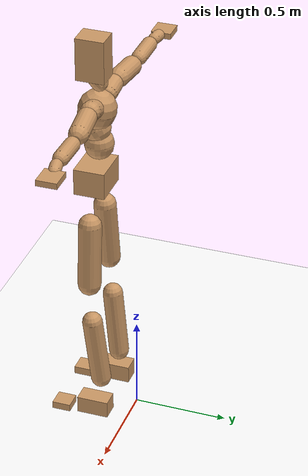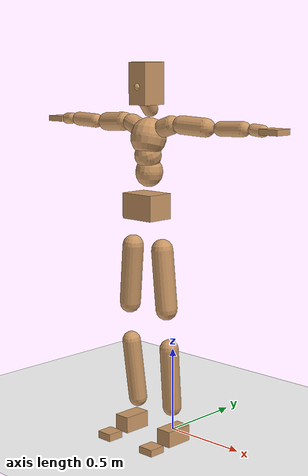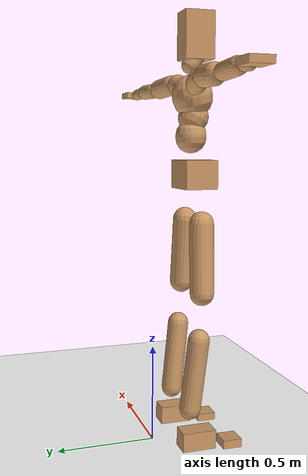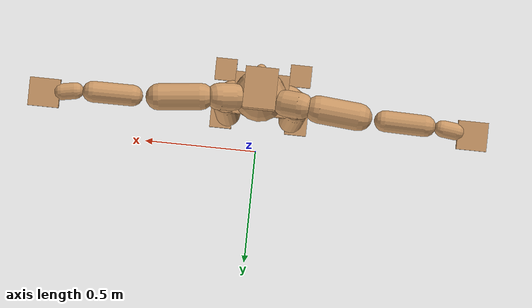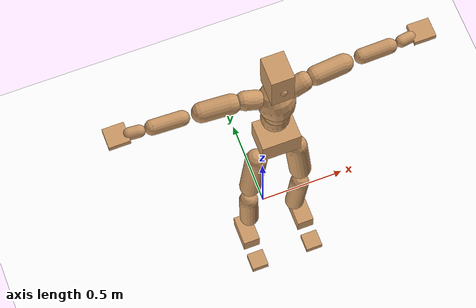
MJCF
<mujoco model="humanoid">
  <option integrator="implicitfast" />

  <visual>
    <global offwidth="1280" offheight="960" />
    <headlight active="1" ambient="0.34 0.34 0.34" diffuse="0.5 0.5 0.5" />
  </visual>

  <default>
    <joint damping="2" stiffness="2" armature="0.01" limited="true" solimplimit="0 .99 .01" />
    <geom condim="1" friction="0.7 0.005 0.0001" solimp=".99 .99 .003" solref="0.015 1" margin="0.001" rgba="0.8 0.6 .4 1" />
    <default class="smplcontact">
      <geom condim="3" friction="1. 0.005 0.0001" solref="0.015 1" solimp="0.98 0.98 0.001" priority="1" />
    </default>
    <default class="stiff_medium">
      <joint stiffness="10" />
    </default>
    <default class="stiff_medium_higher">
      <joint stiffness="50" />
    </default>
    <default class="stiff_high">
      <joint stiffness="100" />
    </default>
  </default>

  <asset>
    <texture type="skybox" builtin="gradient" rgb1="0.99 0.99 0.99" rgb2="0.608 0.828 0.892" width="100" />
    <texture builtin="flat" height="1278" mark="cross" markrgb="1 1 1" name="texgeom" random="0.01" rgb1="0.8 0.6 0.4" rgb2="0.8 0.6 0.4" type="cube" width="127" />
    <texture name="texplane" type="2d" builtin="checker" markrgb="1 1 1" rgb1="0.756 0.772 0.76" rgb2="0.6 0.6 0.6" width="100" height="100" />
    <material name="MatPlane" reflectance="0.5" texture="texplane" texrepeat="1 1" texuniform="true" />
    <material name="geom" texture="texgeom" texuniform="true" />
  </asset>

  <worldbody>
    <light name="tracking_light" pos="0 0 7" dir="0 0 -1" directional="true" cutoff="100" exponent="1" diffuse="1 1 1" specular="0.1 0.1 0.1" mode="trackcom" />
    <camera name="back" pos="0 3 2.4" xyaxes="-1 0 0 0 -1 2" mode="trackcom" />
    <camera name="side" pos="-3 0 2.4" xyaxes="0 -1 0 1 0 2" mode="trackcom" />
    <camera name="front_side" pos="-2.8 -2.8 0.8" xyaxes="0.5 -0.5 0 0.1 0.1 1" mode="trackcom" />
    <geom condim="3" name="floor" pos="0 0 0" rgba="1 1 1 1" size="100 100 .2" type="plane" material="MatPlane" />
    <body name="Pelvis" pos="-0.0018 -0.2233 1.39425" euler="90 0 0">
      <site name="Pelvis" size="0.01" />
      <freejoint name="Pelvis" />
      <geom type="box" pos="-0.0000 -0.0121 -0.0055" size="0.1069 0.0722 0.083" quat="1.0000 0.0000 0.0000 0.0000" density="3165.830099" name="Pelvis" />
      <body name="L_Hip" pos="0.10425 -0.1371 -0.0102">
        <joint name="L_Hip_x" type="hinge" pos="0 0 0" axis="1 0 0" stiffness="20.003933999999997" range="-160.0 22.92" class="stiff_medium" damping="35.822411020285365" armature="0.02851095036953482"/>
        <joint name="L_Hip_y" type="hinge" pos="0 0 0" axis="0 1 0" stiffness="19.874786333333333" range="-70.0 70.0" class="stiff_medium" damping="19.52106111802301" armature="0.019173631393182268"/>
        <joint name="L_Hip_z" type="hinge" pos="0 0 0" axis="0 0 1" stiffness="19.899440777777777" range="-28.65 90.0" class="stiff_medium" damping="23.82476883072695" armature="0.028524400066129187"/>
        <geom type="capsule" density="2040.816327" fromto="0.01035 -0.1125 -0.00135 0.0411 -0.4503 -0.0054" size="0.0615" name="L_Hip" />
        <body name="L_Knee" pos="0.05145 -0.5628 -0.00675">
          <joint name="L_Knee_x" type="hinge" pos="0 0 0" axis="1 0 0" range="-5.16 171.89" damping="17.98138048033531" armature="0.026396428561925728" stiffness="3.827814755555556"/>
          <joint name="L_Knee_y" type="hinge" pos="0 0 0" axis="0 1 0" range="-4.58 6.88" damping="14.976159110005929" armature="0.017722990590982594" stiffness="3.9547032944444442"/>
          <joint name="L_Knee_z" type="hinge" pos="0 0 0" axis="0 0 1" range="-6.88 4.58" damping="17.940045822598716" armature="0.026455159530536433" stiffness="3.8017778222222223"/>
          <geom type="capsule" density="1234.567901" fromto="-0.00405 -0.1194 -0.01305 -0.01635 -0.4776 -0.0525" size="0.0541" name="L_Knee" />
          <body name="L_Ankle" pos="-0.0204 -0.597 -0.06555">
            <joint name="L_Ankle_x" type="hinge" pos="0 0 0" axis="1 0 0" range="-45.84 45.84" class="stiff_medium" damping="9.919510798854802" armature="0.01822161009048093" stiffness="15.0"/>
            <joint name="L_Ankle_y" type="hinge" pos="0 0 0" axis="0 1 0" range="-74.48 22.92" class="stiff_medium" damping="4.917952818000754" armature="0.017915748088949298" stiffness="15.0"/>
            <joint name="L_Ankle_z" type="hinge" pos="0 0 0" axis="0 0 1" range="-4.58 4.58" class="stiff_medium" damping="9.269968981325505" armature="0.015913393502729075" stiffness="15.0"/>
            <geom type="box" pos="0.03495 -0.03585 0.0363" size="0.0483 0.0464 0.085" quat="1.0000 0.0000 0.0000 0.0000" density="449.071558" name="L_Ankle" class="smplcontact" />
            <body name="L_Toe" pos="0.0396 -0.0837 0.17895">
              <joint name="L_Toe_x" type="hinge" pos="0 0 0" axis="1 0 0" range="-91.67 22.92" armature="0.014752348892847213" damping="2.9751318182071076" stiffness="3.0"/>
              <joint name="L_Toe_y" type="hinge" pos="0 0 0" axis="0 1 0" range="-4.58 4.58" armature="0.013348413454862205" damping="2.8300261611718933" stiffness="3.0"/>
              <joint name="L_Toe_z" type="hinge" pos="0 0 0" axis="0 0 1" range="-4.58 4.58" armature="0.010509731565732318" damping="2.511142954799545" stiffness="3.0"/>
              <geom type="box" pos="-0.0045 0.00825 0.0372" size="0.0478 0.02 0.0496" quat="1.0000 0.0000 0.0000 0.0000" density="423.206892" name="L_Toe" class="smplcontact" />
            </body>
          </body>
        </body>
      </body>
      <body name="R_Hip" pos="-0.10155 -0.13575 -0.00645">
        <joint name="R_Hip_x" type="hinge" pos="0 0 0" axis="1 0 0" stiffness="20.003933999999997" range="-160.0 22.92" class="stiff_medium" damping="35.822411020285365" armature="0.02851095036953482"/>
        <joint name="R_Hip_y" type="hinge" pos="0 0 0" axis="0 1 0" stiffness="19.874786333333333" range="-70.0 70.0" class="stiff_medium" damping="19.52106111802301" armature="0.019173631393182268"/>
        <joint name="R_Hip_z" type="hinge" pos="0 0 0" axis="0 0 1" stiffness="19.899440777777777" range="-90.0 28.65" class="stiff_medium" damping="23.82476883072695" armature="0.028524400066129187"/>
        <geom type="capsule" density="2040.816327" fromto="-0.01155 -0.11475 -0.0027 -0.0459 -0.45915 -0.01065" size="0.0606" name="R_Hip" />
        <body name="R_Knee" pos="-0.05745 -0.5739 -0.01335">
          <joint name="R_Knee_x" type="hinge" pos="0 0 0" axis="1 0 0" range="-5.16 171.89" damping="17.98138048033531" armature="0.026396428561925728" stiffness="3.827814755555556"/>
          <joint name="R_Knee_y" type="hinge" pos="0 0 0" axis="0 1 0" range="-6.88 4.58" damping="14.976159110005929" armature="0.017722990590982594" stiffness="3.9547032944444442"/>
          <joint name="R_Knee_z" type="hinge" pos="0 0 0" axis="0 0 1" range="-4.58 6.88" damping="17.940045822598716" armature="0.026455159530536433" stiffness="3.8017778222222223"/>
          <geom type="capsule" density="1234.567901" fromto="0.0048 -0.11955 -0.01275 0.0189 -0.47805 -0.0507" size="0.0541" name="R_Knee" />
          <body name="R_Ankle" pos="0.0237 -0.5976 -0.06345">
            <joint name="R_Ankle_x" type="hinge" pos="0 0 0" axis="1 0 0" range="-45.84 45.84" class="stiff_medium" damping="9.919510798854802" armature="0.01822161009048093" stiffness="15.0"/>
            <joint name="R_Ankle_y" type="hinge" pos="0 0 0" axis="0 1 0" range="-22.92 74.48" class="stiff_medium" damping="4.917952818000754" armature="0.017915748088949298" stiffness="15.0"/>
            <joint name="R_Ankle_z" type="hinge" pos="0 0 0" axis="0 0 1" range="-4.58 4.58" class="stiff_medium" damping="9.269968981325505" armature="0.015913393502729075" stiffness="15.0"/>
            <geom type="box" pos="-0.0318 -0.0261 0.0384" size="0.0483 0.0478 0.0865" quat="1.0000 0.0000 0.0000 0.0000" density="434.700981" name="R_Ankle" class="smplcontact" />
            <body name="R_Toe" pos="-0.0381 -0.07215 0.18495">
              <joint name="R_Toe_x" type="hinge" pos="0 0 0" axis="1 0 0" range="-91.67 22.92" armature="0.014752348892847213" damping="2.9751318182071076" stiffness="3.0"/>
              <joint name="R_Toe_y" type="hinge" pos="0 0 0" axis="0 1 0" range="-4.58 4.58" armature="0.013348413454862205" damping="2.8300261611718933" stiffness="3.0"/>
              <joint name="R_Toe_z" type="hinge" pos="0 0 0" axis="0 0 1" range="-4.58 4.58" armature="0.010509731565732318" damping="2.511142954799545" stiffness="3.0"/>
              <geom type="box" pos="0.0063 0.00675 0.03405" size="0.0479 0.0216 0.0493" quat="1.0000 0.0000 0.0000 0.0000" density="407.384095" name="R_Toe" class="smplcontact" />
            </body>
          </body>
        </body>
      </body>
      <body name="Torso" pos="-0.0025 0.109 -0.0267">
        <joint name="Torso_x" type="hinge" pos="0 0 0" axis="1 0 0" range="-25.78 57.3" class="stiff_medium" damping="15.0" armature="0.010000000000000002" stiffness="10.0"/>
        <joint name="Torso_y" type="hinge" pos="0 0 0" axis="0 1 0" range="-57.3 57.3" class="stiff_high" damping="20.0" armature="0.010000000000000002" stiffness="100.0"/>
        <joint name="Torso_z" type="hinge" pos="0 0 0" axis="0 0 1" range="-34.38 34.38" class="stiff_high" damping="19.999999999999996" armature="0.009999999999999998" stiffness="100.0"/>
        <geom type="capsule" density="2040.816327" fromto="0.0025 0.0608 0.0005 0.003 0.0743 0.0006" size="0.0769" name="Torso" />
        <body name="Spine" pos="0.0055 0.1352 0.0011">
          <joint name="Spine_x" type="hinge" pos="0 0 0" axis="1 0 0" stiffness="10.0" range="-25.78 57.3" class="stiff_medium" damping="15.000000000000007" armature="0.010000000000000009"/>
          <joint name="Spine_y" type="hinge" pos="0 0 0" axis="0 1 0" stiffness="10.0" range="-57.3 57.3" class="stiff_high" damping="7.999999999999999" armature="0.009999999999999998"/>
          <joint name="Spine_z" type="hinge" pos="0 0 0" axis="0 0 1" stiffness="20.0" range="-34.38 34.38" class="stiff_high" damping="12.0" armature="0.010000000000000002"/>
          <geom type="capsule" density="2040.816327" fromto="0.0007 0.0238 0.0114 0.0008 0.0291 0.014" size="0.0755" name="Spine" />
          <body name="Chest" pos="0.0015 0.0529 0.0254">
            <joint name="Chest_x" type="hinge" pos="0 0 0" axis="1 0 0" stiffness="10.0" range="-25.78 57.3" class="stiff_medium" damping="14.999999999999998" armature="0.009999999999999998"/>
            <joint name="Chest_y" type="hinge" pos="0 0 0" axis="0 1 0" stiffness="10.0" range="-57.3 57.3" class="stiff_high" damping="8.0" armature="0.010000000000000002"/>
            <joint name="Chest_z" type="hinge" pos="0 0 0" axis="0 0 1" stiffness="20.0" range="-34.38 34.38" class="stiff_high" damping="12.0" armature="0.01"/>
            <geom type="capsule" density="2040.816327" fromto="-0.0009 0.0682 -0.0173 -0.001 0.0833 -0.0212" size="0.1002" name="Chest" />
            <body name="Neck" pos="-0.0028 0.2139 -0.0429">
              <joint name="Neck_x" type="hinge" pos="0 0 0" axis="1 0 0" range="-28.65 57.3" class="stiff_medium_higher" damping="9.999999999999986" armature="0.00999999999999997" stiffness="50.0"/>
              <joint name="Neck_y" type="hinge" pos="0 0 0" axis="0 1 0" range="-40.11 40.11" class="stiff_medium_higher" damping="10.0" armature="0.01" stiffness="50.0"/>
              <joint name="Neck_z" type="hinge" pos="0 0 0" axis="0 0 1" range="-40.11 40.11" class="stiff_medium_higher" damping="9.999999999999984" armature="0.009999999999999967" stiffness="50.0"/>
              <geom type="capsule" density="1000" fromto="0.001 0.013 0.0103 0.0041 0.052 0.0411" size="0.0436" name="Neck" />
              <body name="Head" pos="0.0052 0.065 0.0513">
                <joint name="Head_x" type="hinge" pos="0 0 0" axis="1 0 0" range="-28.65 57.3" class="stiff_medium_higher" damping="2.000000000000006" armature="0.010000000000000064" stiffness="50.0"/>
                <joint name="Head_y" type="hinge" pos="0 0 0" axis="0 1 0" range="-40.11 40.11" class="stiff_medium_higher" damping="2.0" armature="0.01" stiffness="50.0"/>
                <joint name="Head_z" type="hinge" pos="0 0 0" axis="0 0 1" range="-40.11 40.11" class="stiff_medium_higher" damping="2.0000000000000027" armature="0.01000000000000003" stiffness="50.0"/>
                <geom type="box" pos="-0.0042 0.0876 -0.0116" size="0.0606 0.1154 0.076" quat="1.0000 0.0000 0.0000 0.0000" density="1018.069894" name="Head" />
                <geom type="capsule" name="nose" size="0.02 0.01" pos="0 0.07 0.05" quat="1 0 0 0" mass="0" contype="0" conaffinity="0" />
              </body>
            </body>
            <body name="L_Thorax" pos="0.0788 0.1217 -0.0341">
              <joint name="L_Thorax_x" type="hinge" pos="0 0 0" axis="1 0 0" range="-10.89 4.58" class="stiff_medium_higher" damping="20.000000000000036" armature="0.010000000000000035" stiffness="50.0"/>
              <joint name="L_Thorax_y" type="hinge" pos="0 0 0" axis="0 1 0" range="-28.65 17.19" class="stiff_medium_higher" damping="20.0" armature="0.01" stiffness="50.0"/>
              <joint name="L_Thorax_z" type="hinge" pos="0 0 0" axis="0 0 1" range="-31.51 40.11" class="stiff_medium_higher" damping="20.0" armature="0.010000000000000002" stiffness="50.0"/>
              <geom type="capsule" density="1000" fromto="0.0182 0.0061 -0.0018 0.0728 0.0244 -0.0071" size="0.0521" name="L_Thorax" />
              <body name="L_Shoulder" pos="0.091 0.0305 -0.0089">
                <joint name="L_Shoulder_x" type="hinge" pos="0 0 0" axis="1 0 0" range="-97.4 97.4" class="stiff_medium" damping="5.999999999999981" armature="0.009999999999999938" stiffness="10.0"/>
                <joint name="L_Shoulder_y" type="hinge" pos="0 0 0" axis="0 1 0" range="-108.86 80.21" class="stiff_medium" damping="5.999999999999999" armature="0.009999999999999998" stiffness="10.0"/>
                <joint name="L_Shoulder_z" type="hinge" pos="0 0 0" axis="0 0 1" range="-97.4 85.94" class="stiff_medium" damping="6.000000000000003" armature="0.010000000000000009" stiffness="10.0"/>
                <geom type="capsule" density="1000" fromto="0.0519 -0.0026 -0.0055 0.2077 -0.0102 -0.022" size="0.0517" name="L_Shoulder" />
                <body name="L_Elbow" pos="0.2596 -0.0128 -0.0275">
                  <joint name="L_Elbow_x" type="hinge" pos="0 0 0" axis="1 0 0" range="-17.19 4.58" damping="4.999999999999851" armature="0.009999999999999405" stiffness="2.0"/>
                  <joint name="L_Elbow_y" type="hinge" pos="0 0 0" axis="0 1 0" range="-180.0 17.19" damping="5.000000000000002" armature="0.010000000000000009" stiffness="2.0"/>
                  <joint name="L_Elbow_z" type="hinge" pos="0 0 0" axis="0 0 1" range="-100.84 4.58" damping="5.000000000000005" armature="0.010000000000000023" stiffness="2.0"/>
                  <geom type="capsule" density="1000" fromto="0.0498 0.0018 -0.0002 0.1994 0.0072 -0.0009" size="0.0405" name="L_Elbow" />
                  <body name="L_Wrist" pos="0.2492 0.009 -0.0012">
                    <joint name="L_Wrist_x" type="hinge" pos="0 0 0" axis="1 0 0" range="-180.0 22.92" armature="0.00999999999999983" damping="1.999999999999983" stiffness="2.0"/>
                    <joint name="L_Wrist_y" type="hinge" pos="0 0 0" axis="0 1 0" range="-17.19 17.19" armature="0.009999999999999879" damping="1.9999999999999878" stiffness="2.0"/>
                    <joint name="L_Wrist_z" type="hinge" pos="0 0 0" axis="0 0 1" range="-22.92 22.92" armature="0.00999999999999996" damping="1.999999999999996" stiffness="2.0"/>
                    <geom type="capsule" density="1000" fromto="0.0168 -0.0016 -0.003 0.0672 -0.0065 -0.012" size="0.0318" name="L_Wrist" class="smplcontact" />
                    <body name="L_Hand" pos="0.084 -0.0082 -0.0149">
                      <joint name="L_Hand_x" type="hinge" pos="0 0 0" axis="1 0 0" range="-17.19 17.19" armature="0.009999999999999858" damping="1.9999999999999858" stiffness="2.0"/>
                      <joint name="L_Hand_y" type="hinge" pos="0 0 0" axis="0 1 0" range="-51.57 51.57" armature="0.01000000000000043" damping="2.000000000000043" stiffness="2.0"/>
                      <joint name="L_Hand_z" type="hinge" pos="0 0 0" axis="0 0 1" range="-91.67 91.67" armature="0.010000000000000744" damping="2.000000000000074" stiffness="2.0"/>
                      <geom type="box" pos="0.0493 0.001 -0.0058" size="0.0585 0.0158 0.0538" quat="1.0000 0.0000 0.0000 0.0000" density="400.552564" name="L_Hand" class="smplcontact" />
                    </body>
                  </body>
                </body>
              </body>
            </body>
            <body name="R_Thorax" pos="-0.0818 0.1188 -0.0386">
              <joint name="R_Thorax_x" type="hinge" pos="0 0 0" axis="1 0 0" range="-10.89 4.58" class="stiff_medium_higher" damping="20.000000000000036" armature="0.010000000000000035" stiffness="50.0"/>
              <joint name="R_Thorax_y" type="hinge" pos="0 0 0" axis="0 1 0" range="-17.19 28.65" class="stiff_medium_higher" damping="20.0" armature="0.01" stiffness="50.0"/>
              <joint name="R_Thorax_z" type="hinge" pos="0 0 0" axis="0 0 1" range="-40.11 31.51" class="stiff_medium_higher" damping="20.0" armature="0.010000000000000002" stiffness="50.0"/>
              <geom type="capsule" density="1000" fromto="-0.0192 0.0065 -0.0018 -0.0768 0.026 -0.0073" size="0.0511" name="R_Thorax" />
              <body name="R_Shoulder" pos="-0.096 0.0326 -0.0091">
                <joint name="R_Shoulder_x" type="hinge" pos="0 0 0" axis="1 0 0" range="-97.4 97.4" class="stiff_medium" damping="5.999999999999981" armature="0.009999999999999938" stiffness="10.0"/>
                <joint name="R_Shoulder_y" type="hinge" pos="0 0 0" axis="0 1 0" range="-80.21 108.86" class="stiff_medium" damping="5.999999999999999" armature="0.009999999999999998" stiffness="10.0"/>
                <joint name="R_Shoulder_z" type="hinge" pos="0 0 0" axis="0 0 1" range="-85.94 97.4" class="stiff_medium" damping="6.000000000000003" armature="0.010000000000000009" stiffness="10.0"/>
                <geom type="capsule" density="1000" fromto="-0.0507 -0.0027 -0.0043 -0.203 -0.0107 -0.0171" size="0.0531" name="R_Shoulder" />
                <body name="R_Elbow" pos="-0.2537 -0.0133 -0.0214">
                  <joint name="R_Elbow_x" type="hinge" pos="0 0 0" axis="1 0 0" range="-17.19 4.58" damping="4.999999999999851" armature="0.009999999999999405" stiffness="2.0"/>
                  <joint name="R_Elbow_y" type="hinge" pos="0 0 0" axis="0 1 0" range="-17.19 180.0" damping="5.000000000000002" armature="0.010000000000000009" stiffness="2.0"/>
                  <joint name="R_Elbow_z" type="hinge" pos="0 0 0" axis="0 0 1" range="-4.58 100.84" damping="5.000000000000005" armature="0.010000000000000023" stiffness="2.0"/>
                  <geom type="capsule" density="1000" fromto="-0.0511 0.0016 -0.0011 -0.2042 0.0062 -0.0044" size="0.0408" name="R_Elbow" />
                  <body name="R_Wrist" pos="-0.2553 0.0078 -0.0056">
                    <joint name="R_Wrist_x" type="hinge" pos="0 0 0" axis="1 0 0" range="-180.0 22.92" armature="0.00999999999999983" damping="1.999999999999983" stiffness="2.0"/>
                    <joint name="R_Wrist_y" type="hinge" pos="0 0 0" axis="0 1 0" range="-17.19 17.19" armature="0.009999999999999879" damping="1.9999999999999878" stiffness="2.0"/>
                    <joint name="R_Wrist_z" type="hinge" pos="0 0 0" axis="0 0 1" range="-22.92 22.92" armature="0.00999999999999996" damping="1.999999999999996" stiffness="2.0"/>
                    <geom type="capsule" density="1000" fromto="-0.0169 -0.0012 -0.0021 -0.0677 -0.0049 -0.0083" size="0.0326" name="R_Wrist" class="smplcontact" />
                    <body name="R_Hand" pos="-0.0846 -0.0061 -0.0103">
                      <joint name="R_Hand_x" type="hinge" pos="0 0 0" axis="1 0 0" range="-17.19 17.19" armature="0.009999999999999858" damping="1.9999999999999858" stiffness="2.0"/>
                      <joint name="R_Hand_y" type="hinge" pos="0 0 0" axis="0 1 0" range="-51.57 51.57" armature="0.01000000000000043" damping="2.000000000000043" stiffness="2.0"/>
                      <joint name="R_Hand_z" type="hinge" pos="0 0 0" axis="0 0 1" range="-91.67 91.67" armature="0.010000000000000744" damping="2.000000000000074" stiffness="2.0"/>
                      <geom type="box" pos="-0.0462 -0.0009 -0.0079" size="0.0569 0.0164 0.0546" quat="1.0000 0.0000 0.0000 0.0000" density="403.679611" name="R_Hand" class="smplcontact" />
                    </body>
                  </body>
                </body>
              </body>
            </body>
          </body>
        </body>
      </body>
    </body>
  </worldbody>
  <actuator>
    <general name="L_Hip_x" joint="L_Hip_x" biastype="affine" gainprm="574.7731638418608" biasprm="-430.7342297148604 -360.07081199999993 -4.776321469371382" ctrllimited="true" ctrlrange="-1 1" forcerange="-720.1416239999999 720.1416239999999" />
    <general name="L_Hip_y" joint="L_Hip_y" biastype="affine" gainprm="437.0693791552677" biasprm="0.0 -357.746154 -3.904212223604602" ctrllimited="true" ctrlrange="-1 1" forcerange="-715.492308 715.492308" />
    <general name="L_Hip_z" joint="L_Hip_z" biastype="affine" gainprm="370.8757960034052" biasprm="191.76763661870126 -358.189934 -4.76495376614539" ctrllimited="true" ctrlrange="-1 1" forcerange="-716.379868 716.379868" />
    <general name="L_Knee_x" joint="L_Knee_x" biastype="affine" gainprm="532.2758040884426" biasprm="501.2501825228241 -344.503328 -4.495345120083828" ctrllimited="true" ctrlrange="-1 1" forcerange="-689.006656 689.006656" />
    <general name="L_Knee_y" joint="L_Knee_y" biastype="affine" gainprm="35.59495143057326" biasprm="7.143838419748561 -355.9232965 -3.744039777501482" ctrllimited="true" ctrlrange="-1 1" forcerange="-711.846593 711.846593" />
    <general name="L_Knee_z" joint="L_Knee_z" biastype="affine" gainprm="34.21852079824382" biasprm="-6.867591434202513 -342.160004 -4.485011455649679" ctrllimited="true" ctrlrange="-1 1" forcerange="-684.320008 684.320008" />
    <general name="L_Ankle_x" joint="L_Ankle_x" biastype="affine" gainprm="108.0079554304171" biasprm="0.0 -135.0 -3.3065035996182672" ctrllimited="true" ctrlrange="-1 1" forcerange="-270.0 270.0" />
    <general name="L_Ankle_y" joint="L_Ankle_y" biastype="affine" gainprm="114.74667167236721" biasprm="-60.742693957158664 -135.0 -3.2786352120005025" ctrllimited="true" ctrlrange="-1 1" forcerange="-270.0 270.0" />
    <general name="L_Ankle_z" joint="L_Ankle_z" biastype="affine" gainprm="10.791370765080938" biasprm="0.0 -135.0 -3.0899896604418347" ctrllimited="true" ctrlrange="-1 1" forcerange="-270.0 270.0" />
    <general name="L_Toe_x" joint="L_Toe_x" biastype="affine" gainprm="107.99853065245631" biasprm="-64.79534848028948 -108.0 -1.1900527272828432" ctrllimited="true" ctrlrange="-1 1" forcerange="-216.0 216.0" />
    <general name="L_Toe_y" joint="L_Toe_y" biastype="affine" gainprm="8.633096612064751" biasprm="0.0 -108.0 -1.1320104644687574" ctrllimited="true" ctrlrange="-1 1" forcerange="-216.0 216.0" />
    <general name="L_Toe_z" joint="L_Toe_z" biastype="affine" gainprm="8.633096612064751" biasprm="0.0 -108.0 -1.004457181919818" ctrllimited="true" ctrlrange="-1 1" forcerange="-216.0 216.0" />
    <general name="R_Hip_x" joint="R_Hip_x" biastype="affine" gainprm="574.7731638418608" biasprm="-430.7342297148604 -360.07081199999993 -4.776321469371382" ctrllimited="true" ctrlrange="-1 1" forcerange="-720.1416239999999 720.1416239999999" />
    <general name="R_Hip_y" joint="R_Hip_y" biastype="affine" gainprm="437.0693791552677" biasprm="0.0 -357.746154 -3.904212223604602" ctrllimited="true" ctrlrange="-1 1" forcerange="-715.492308 715.492308" />
    <general name="R_Hip_z" joint="R_Hip_z" biastype="affine" gainprm="370.8757960034052" biasprm="-191.76763661870126 -358.189934 -4.76495376614539" ctrllimited="true" ctrlrange="-1 1" forcerange="-716.379868 716.379868" />
    <general name="R_Knee_x" joint="R_Knee_x" biastype="affine" gainprm="532.2758040884426" biasprm="501.2501825228241 -344.503328 -4.495345120083828" ctrllimited="true" ctrlrange="-1 1" forcerange="-689.006656 689.006656" />
    <general name="R_Knee_y" joint="R_Knee_y" biastype="affine" gainprm="35.59495143057326" biasprm="-7.143838419748561 -355.9232965 -3.744039777501482" ctrllimited="true" ctrlrange="-1 1" forcerange="-711.846593 711.846593" />
    <general name="R_Knee_z" joint="R_Knee_z" biastype="affine" gainprm="34.21852079824382" biasprm="6.867591434202513 -342.160004 -4.485011455649679" ctrllimited="true" ctrlrange="-1 1" forcerange="-684.320008 684.320008" />
    <general name="R_Ankle_x" joint="R_Ankle_x" biastype="affine" gainprm="108.0079554304171" biasprm="0.0 -135.0 -3.3065035996182672" ctrllimited="true" ctrlrange="-1 1" forcerange="-270.0 270.0" />
    <general name="R_Ankle_y" joint="R_Ankle_y" biastype="affine" gainprm="114.74667167236721" biasprm="60.742693957158664 -135.0 -3.2786352120005025" ctrllimited="true" ctrlrange="-1 1" forcerange="-270.0 270.0" />
    <general name="R_Ankle_z" joint="R_Ankle_z" biastype="affine" gainprm="10.791370765080938" biasprm="0.0 -135.0 -3.0899896604418347" ctrllimited="true" ctrlrange="-1 1" forcerange="-270.0 270.0" />
    <general name="R_Toe_x" joint="R_Toe_x" biastype="affine" gainprm="107.99853065245631" biasprm="-64.79534848028948 -108.0 -1.1900527272828432" ctrllimited="true" ctrlrange="-1 1" forcerange="-216.0 216.0" />
    <general name="R_Toe_y" joint="R_Toe_y" biastype="affine" gainprm="8.633096612064751" biasprm="0.0 -108.0 -1.1320104644687574" ctrllimited="true" ctrlrange="-1 1" forcerange="-216.0 216.0" />
    <general name="R_Toe_z" joint="R_Toe_z" biastype="affine" gainprm="8.633096612064751" biasprm="0.0 -108.0 -1.004457181919818" ctrllimited="true" ctrlrange="-1 1" forcerange="-216.0 216.0" />
    <general name="Torso_x" joint="Torso_x" biastype="affine" gainprm="174.00234510682668" biasprm="66.0153336274335 -240.0 -4.0" ctrllimited="true" ctrlrange="-1 1" forcerange="-360.0 360.0" />
    <general name="Torso_y" joint="Torso_y" biastype="affine" gainprm="240.0176787342602" biasprm="0.0 -240.0 -4.0" ctrllimited="true" ctrlrange="-1 1" forcerange="-360.0 360.0" />
    <general name="Torso_z" joint="Torso_z" biastype="affine" gainprm="144.01060724055614" biasprm="0.0 -240.0 -3.9999999999999996" ctrllimited="true" ctrlrange="-1 1" forcerange="-360.0 360.0" />
    <general name="Spine_x" joint="Spine_x" biastype="affine" gainprm="174.00234510682668" biasprm="66.0153336274335 -240.0 -4.000000000000002" ctrllimited="true" ctrlrange="-1 1" forcerange="-360.0 360.0" />
    <general name="Spine_y" joint="Spine_y" biastype="affine" gainprm="240.0176787342602" biasprm="0.0 -240.0 -3.9999999999999996" ctrllimited="true" ctrlrange="-1 1" forcerange="-360.0 360.0" />
    <general name="Spine_z" joint="Spine_z" biastype="affine" gainprm="144.01060724055614" biasprm="0.0 -240.0 -4.0" ctrllimited="true" ctrlrange="-1 1" forcerange="-360.0 360.0" />
    <general name="Chest_x" joint="Chest_x" biastype="affine" gainprm="174.00234510682668" biasprm="66.0153336274335 -240.0 -3.9999999999999996" ctrllimited="true" ctrlrange="-1 1" forcerange="-360.0 360.0" />
    <general name="Chest_y" joint="Chest_y" biastype="affine" gainprm="240.0176787342602" biasprm="0.0 -240.0 -4.0" ctrllimited="true" ctrlrange="-1 1" forcerange="-360.0 360.0" />
    <general name="Chest_z" joint="Chest_z" biastype="affine" gainprm="144.01060724055614" biasprm="0.0 -240.0 -4.0" ctrllimited="true" ctrlrange="-1 1" forcerange="-360.0 360.0" />
    <general name="Neck_x" joint="Neck_x" biastype="affine" gainprm="27.00198885760427" biasprm="9.000662952534757 -36.0 -0.7999999999999989" ctrllimited="true" ctrlrange="-1 1" forcerange="-72.0 72.0" />
    <general name="Neck_y" joint="Neck_y" biastype="affine" gainprm="25.20185626709732" biasprm="0.0 -36.0 -0.8" ctrllimited="true" ctrlrange="-1 1" forcerange="-72.0 72.0" />
    <general name="Neck_z" joint="Neck_z" biastype="affine" gainprm="25.20185626709732" biasprm="0.0 -36.0 -0.7999999999999987" ctrllimited="true" ctrlrange="-1 1" forcerange="-72.0 72.0" />
    <general name="Head_x" joint="Head_x" biastype="affine" gainprm="18.001325905069514" biasprm="6.000441968356505 -24.0 -0.8000000000000025" ctrllimited="true" ctrlrange="-1 1" forcerange="-48.0 48.0" />
    <general name="Head_y" joint="Head_y" biastype="affine" gainprm="16.801237511398213" biasprm="0.0 -24.0 -0.8" ctrllimited="true" ctrlrange="-1 1" forcerange="-48.0 48.0" />
    <general name="Head_z" joint="Head_z" biastype="affine" gainprm="16.801237511398213" biasprm="0.0 -24.0 -0.8000000000000012" ctrllimited="true" ctrlrange="-1 1" forcerange="-48.0 48.0" />
    <general name="L_Thorax_x" joint="L_Thorax_x" biastype="affine" gainprm="16.200146117011364" biasprm="-6.6078165480505335 -120.0 -1.600000000000003" ctrllimited="true" ctrlrange="-1 1" forcerange="-240.0 240.0" />
    <general name="L_Thorax_y" joint="L_Thorax_y" biastype="affine" gainprm="48.00353574685204" biasprm="-12.00088393671301 -120.0 -1.6" ctrllimited="true" ctrlrange="-1 1" forcerange="-240.0 240.0" />
    <general name="L_Thorax_z" joint="L_Thorax_z" biastype="affine" gainprm="75.00028861670033" biasprm="9.00589894029074 -120.0 -1.6" ctrllimited="true" ctrlrange="-1 1" forcerange="-240.0 240.0" />
    <general name="L_Shoulder_x" joint="L_Shoulder_x" biastype="affine" gainprm="81.5976331892389" biasprm="0.0 -48.0 -1.5999999999999952" ctrllimited="true" ctrlrange="-1 1" forcerange="-96.0 96.0" />
    <general name="L_Shoulder_y" joint="L_Shoulder_y" biastype="affine" gainprm="79.19745640189629" biasprm="-12.00088393671301 -48.0 -1.5999999999999999" ctrllimited="true" ctrlrange="-1 1" forcerange="-96.0 96.0" />
    <general name="L_Shoulder_z" joint="L_Shoulder_z" biastype="affine" gainprm="76.79727961455369" biasprm="-4.800353574685214 -48.0 -1.6000000000000008" ctrllimited="true" ctrlrange="-1 1" forcerange="-96.0 96.0" />
    <general name="L_Elbow_x" joint="L_Elbow_x" biastype="affine" gainprm="13.67849441372996" biasprm="-7.923096672353461 -72.0 -0.7999999999999763" ctrllimited="true" ctrlrange="-1 1" forcerange="-144.0 144.0" />
    <general name="L_Elbow_y" joint="L_Elbow_y" biastype="affine" gainprm="123.89813107227425" biasprm="-102.29653998619085 -72.0 -0.8000000000000004" ctrllimited="true" ctrlrange="-1 1" forcerange="-144.0 144.0" />
    <general name="L_Elbow_z" joint="L_Elbow_z" biastype="affine" gainprm="66.23733950828719" biasprm="-60.4819417669107 -72.0 -0.8000000000000009" ctrllimited="true" ctrlrange="-1 1" forcerange="-144.0 144.0" />
    <general name="L_Wrist_x" joint="L_Wrist_x" biastype="affine" gainprm="21.24973270888136" biasprm="-16.449379134196157 -12.0 -0.7999999999999932" ctrllimited="true" ctrlrange="-1 1" forcerange="-24.0 24.0" />
    <general name="L_Wrist_y" joint="L_Wrist_y" biastype="affine" gainprm="3.6002651810139037" biasprm="0.0 -12.0 -0.7999999999999952" ctrllimited="true" ctrlrange="-1 1" forcerange="-24.0 24.0" />
    <general name="L_Wrist_z" joint="L_Wrist_z" biastype="affine" gainprm="4.800353574685205" biasprm="0.0 -12.0 -0.7999999999999985" ctrllimited="true" ctrlrange="-1 1" forcerange="-24.0 24.0" />
    <general name="L_Hand_x" joint="L_Hand_x" biastype="affine" gainprm="3.6002651810139037" biasprm="0.0 -12.0 -0.7999999999999944" ctrllimited="true" ctrlrange="-1 1" forcerange="-24.0 24.0" />
    <general name="L_Hand_y" joint="L_Hand_y" biastype="affine" gainprm="10.800795543041708" biasprm="0.0 -12.0 -0.8000000000000173" ctrllimited="true" ctrlrange="-1 1" forcerange="-24.0 24.0" />
    <general name="L_Hand_z" joint="L_Hand_z" biastype="affine" gainprm="19.199319903638422" biasprm="0.0 -12.0 -0.8000000000000297" ctrllimited="true" ctrlrange="-1 1" forcerange="-24.0 24.0" />
    <general name="R_Thorax_x" joint="R_Thorax_x" biastype="affine" gainprm="16.200146117011364" biasprm="-6.6078165480505335 -120.0 -1.600000000000003" ctrllimited="true" ctrlrange="-1 1" forcerange="-240.0 240.0" />
    <general name="R_Thorax_y" joint="R_Thorax_y" biastype="affine" gainprm="48.00353574685204" biasprm="12.000883936713002 -120.0 -1.6" ctrllimited="true" ctrlrange="-1 1" forcerange="-240.0 240.0" />
    <general name="R_Thorax_z" joint="R_Thorax_z" biastype="affine" gainprm="75.00028861670033" biasprm="-9.00589894029074 -120.0 -1.6" ctrllimited="true" ctrlrange="-1 1" forcerange="-240.0 240.0" />
    <general name="R_Shoulder_x" joint="R_Shoulder_x" biastype="affine" gainprm="81.5976331892389" biasprm="0.0 -48.0 -1.5999999999999952" ctrllimited="true" ctrlrange="-1 1" forcerange="-96.0 96.0" />
    <general name="R_Shoulder_y" joint="R_Shoulder_y" biastype="affine" gainprm="79.19745640189629" biasprm="12.00088393671301 -48.0 -1.5999999999999999" ctrllimited="true" ctrlrange="-1 1" forcerange="-96.0 96.0" />
    <general name="R_Shoulder_z" joint="R_Shoulder_z" biastype="affine" gainprm="76.79727961455369" biasprm="4.800353574685204 -48.0 -1.6000000000000008" ctrllimited="true" ctrlrange="-1 1" forcerange="-96.0 96.0" />
    <general name="R_Elbow_x" joint="R_Elbow_x" biastype="affine" gainprm="13.67849441372996" biasprm="-7.923096672353461 -72.0 -0.7999999999999763" ctrllimited="true" ctrlrange="-1 1" forcerange="-144.0 144.0" />
    <general name="R_Elbow_y" joint="R_Elbow_y" biastype="affine" gainprm="123.89813107227425" biasprm="102.29653998619085 -72.0 -0.8000000000000004" ctrllimited="true" ctrlrange="-1 1" forcerange="-144.0 144.0" />
    <general name="R_Elbow_z" joint="R_Elbow_z" biastype="affine" gainprm="66.23733950828719" biasprm="60.481941766910694 -72.0 -0.8000000000000009" ctrllimited="true" ctrlrange="-1 1" forcerange="-144.0 144.0" />
    <general name="R_Wrist_x" joint="R_Wrist_x" biastype="affine" gainprm="21.24973270888136" biasprm="-16.449379134196157 -12.0 -0.7999999999999932" ctrllimited="true" ctrlrange="-1 1" forcerange="-24.0 24.0" />
    <general name="R_Wrist_y" joint="R_Wrist_y" biastype="affine" gainprm="3.6002651810139037" biasprm="0.0 -12.0 -0.7999999999999952" ctrllimited="true" ctrlrange="-1 1" forcerange="-24.0 24.0" />
    <general name="R_Wrist_z" joint="R_Wrist_z" biastype="affine" gainprm="4.800353574685205" biasprm="0.0 -12.0 -0.7999999999999985" ctrllimited="true" ctrlrange="-1 1" forcerange="-24.0 24.0" />
    <general name="R_Hand_x" joint="R_Hand_x" biastype="affine" gainprm="3.6002651810139037" biasprm="0.0 -12.0 -0.7999999999999944" ctrllimited="true" ctrlrange="-1 1" forcerange="-24.0 24.0" />
    <general name="R_Hand_y" joint="R_Hand_y" biastype="affine" gainprm="10.800795543041708" biasprm="0.0 -12.0 -0.8000000000000173" ctrllimited="true" ctrlrange="-1 1" forcerange="-24.0 24.0" />
    <general name="R_Hand_z" joint="R_Hand_z" biastype="affine" gainprm="19.199319903638422" biasprm="0.0 -12.0 -0.8000000000000297" ctrllimited="true" ctrlrange="-1 1" forcerange="-24.0 24.0" />
  </actuator>
  <contact>
    <exclude body1="Torso" body2="Chest" />
    <exclude body1="Head" body2="Chest" />
    <exclude body1="R_Knee" body2="R_Toe" />
    <exclude body1="R_Knee" body2="L_Ankle" />
    <exclude body1="R_Knee" body2="L_Toe" />
    <exclude body1="L_Knee" body2="L_Toe" />
    <exclude body1="L_Knee" body2="R_Ankle" />
    <exclude body1="L_Knee" body2="R_Toe" />
    <exclude body1="L_Shoulder" body2="Chest" />
    <exclude body1="R_Shoulder" body2="Chest" />
  </contact>
  <sensor>
    <framelinvel name="sensor_Pelvis_framelinvel" objtype="xbody" objname="Pelvis" />
    <framelinvel name="sensor_L_Hip_framelinvel" objtype="xbody" objname="L_Hip" />
    <framelinvel name="sensor_L_Knee_framelinvel" objtype="xbody" objname="L_Knee" />
    <framelinvel name="sensor_L_Ankle_framelinvel" objtype="xbody" objname="L_Ankle" />
    <framelinvel name="sensor_L_Toe_framelinvel" objtype="xbody" objname="L_Toe" />
    <framelinvel name="sensor_R_Hip_framelinvel" objtype="xbody" objname="R_Hip" />
    <framelinvel name="sensor_R_Knee_framelinvel" objtype="xbody" objname="R_Knee" />
    <framelinvel name="sensor_R_Ankle_framelinvel" objtype="xbody" objname="R_Ankle" />
    <framelinvel name="sensor_R_Toe_framelinvel" objtype="xbody" objname="R_Toe" />
    <framelinvel name="sensor_Torso_framelinvel" objtype="xbody" objname="Torso" />
    <framelinvel name="sensor_Spine_framelinvel" objtype="xbody" objname="Spine" />
    <framelinvel name="sensor_Chest_framelinvel" objtype="xbody" objname="Chest" />
    <framelinvel name="sensor_Neck_framelinvel" objtype="xbody" objname="Neck" />
    <framelinvel name="sensor_Head_framelinvel" objtype="xbody" objname="Head" />
    <framelinvel name="sensor_L_Thorax_framelinvel" objtype="xbody" objname="L_Thorax" />
    <framelinvel name="sensor_L_Shoulder_framelinvel" objtype="xbody" objname="L_Shoulder" />
    <framelinvel name="sensor_L_Elbow_framelinvel" objtype="xbody" objname="L_Elbow" />
    <framelinvel name="sensor_L_Wrist_framelinvel" objtype="xbody" objname="L_Wrist" />
    <framelinvel name="sensor_L_Hand_framelinvel" objtype="xbody" objname="L_Hand" />
    <framelinvel name="sensor_R_Thorax_framelinvel" objtype="xbody" objname="R_Thorax" />
    <framelinvel name="sensor_R_Shoulder_framelinvel" objtype="xbody" objname="R_Shoulder" />
    <framelinvel name="sensor_R_Elbow_framelinvel" objtype="xbody" objname="R_Elbow" />
    <framelinvel name="sensor_R_Wrist_framelinvel" objtype="xbody" objname="R_Wrist" />
    <framelinvel name="sensor_R_Hand_framelinvel" objtype="xbody" objname="R_Hand" />
    <frameangvel name="sensor_Pelvis_frameangvel" objtype="xbody" objname="Pelvis" />
    <frameangvel name="sensor_L_Hip_frameangvel" objtype="xbody" objname="L_Hip" />
    <frameangvel name="sensor_L_Knee_frameangvel" objtype="xbody" objname="L_Knee" />
    <frameangvel name="sensor_L_Ankle_frameangvel" objtype="xbody" objname="L_Ankle" />
    <frameangvel name="sensor_L_Toe_frameangvel" objtype="xbody" objname="L_Toe" />
    <frameangvel name="sensor_R_Hip_frameangvel" objtype="xbody" objname="R_Hip" />
    <frameangvel name="sensor_R_Knee_frameangvel" objtype="xbody" objname="R_Knee" />
    <frameangvel name="sensor_R_Ankle_frameangvel" objtype="xbody" objname="R_Ankle" />
    <frameangvel name="sensor_R_Toe_frameangvel" objtype="xbody" objname="R_Toe" />
    <frameangvel name="sensor_Torso_frameangvel" objtype="xbody" objname="Torso" />
    <frameangvel name="sensor_Spine_frameangvel" objtype="xbody" objname="Spine" />
    <frameangvel name="sensor_Chest_frameangvel" objtype="xbody" objname="Chest" />
    <frameangvel name="sensor_Neck_frameangvel" objtype="xbody" objname="Neck" />
    <frameangvel name="sensor_Head_frameangvel" objtype="xbody" objname="Head" />
    <frameangvel name="sensor_L_Thorax_frameangvel" objtype="xbody" objname="L_Thorax" />
    <frameangvel name="sensor_L_Shoulder_frameangvel" objtype="xbody" objname="L_Shoulder" />
    <frameangvel name="sensor_L_Elbow_frameangvel" objtype="xbody" objname="L_Elbow" />
    <frameangvel name="sensor_L_Wrist_frameangvel" objtype="xbody" objname="L_Wrist" />
    <frameangvel name="sensor_L_Hand_frameangvel" objtype="xbody" objname="L_Hand" />
    <frameangvel name="sensor_R_Thorax_frameangvel" objtype="xbody" objname="R_Thorax" />
    <frameangvel name="sensor_R_Shoulder_frameangvel" objtype="xbody" objname="R_Shoulder" />
    <frameangvel name="sensor_R_Elbow_frameangvel" objtype="xbody" objname="R_Elbow" />
    <frameangvel name="sensor_R_Wrist_frameangvel" objtype="xbody" objname="R_Wrist" />
    <frameangvel name="sensor_R_Hand_frameangvel" objtype="xbody" objname="R_Hand" />
    <subtreelinvel name="Chest_subtreelinvel" body="Chest" />
    <gyro name="Pelvis_gyro" site="Pelvis" />
  </sensor>
</mujoco>
